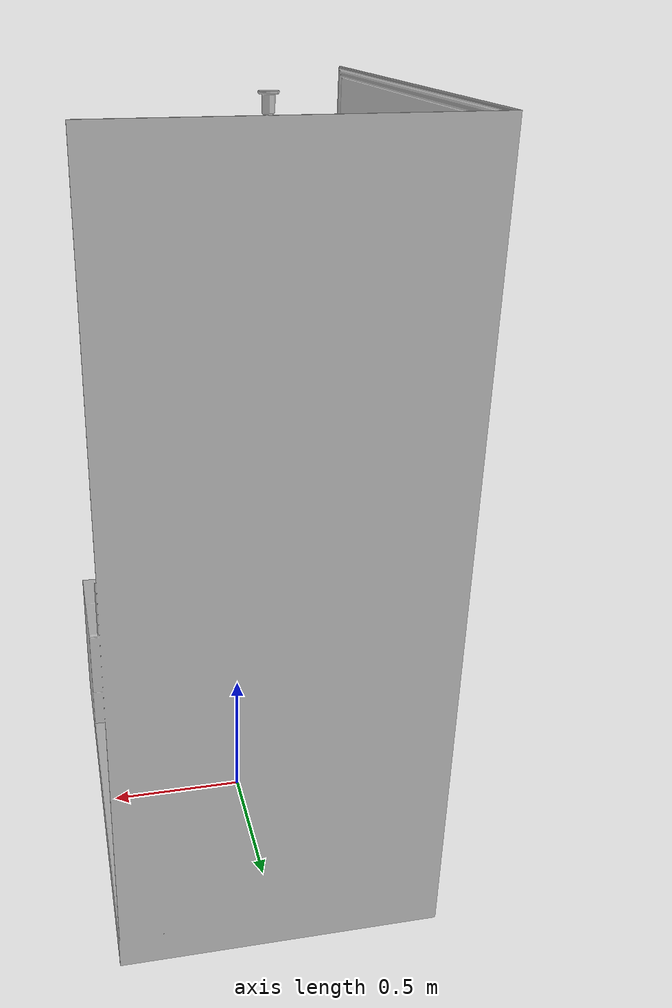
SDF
<?xml version='1.0'?>
<sdf version='1.4'>
  <model name='s__1322'>
    <pose>0 0 0 0 0 0</pose>
    <static>true</static>
    <link name='link'>
      <collision name='collision'>
        <pose>0 0 0 0 0 0</pose>
        <geometry>
          <box>
            <size>1.11 1.63 2</size>
          </box>
        </geometry>
      </collision>
      <visual name='visual'>
        <pose>0 0 0 0 0 0</pose>
        <geometry>
          <mesh><uri>model://s__1322/s__1322.dae</uri></mesh>
        </geometry>
      </visual>
    </link>
  </model>
</sdf>
